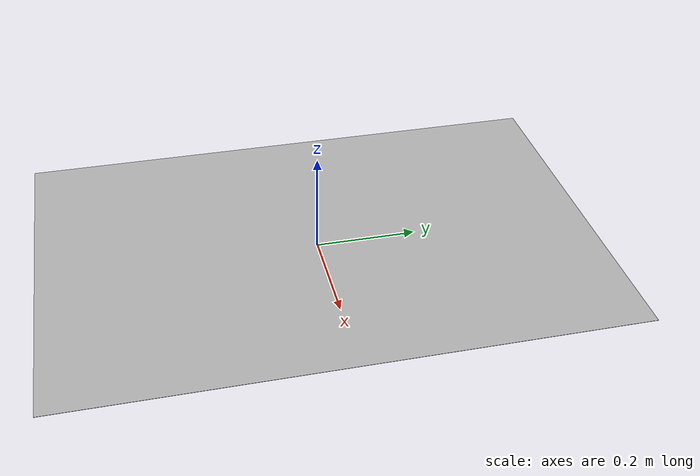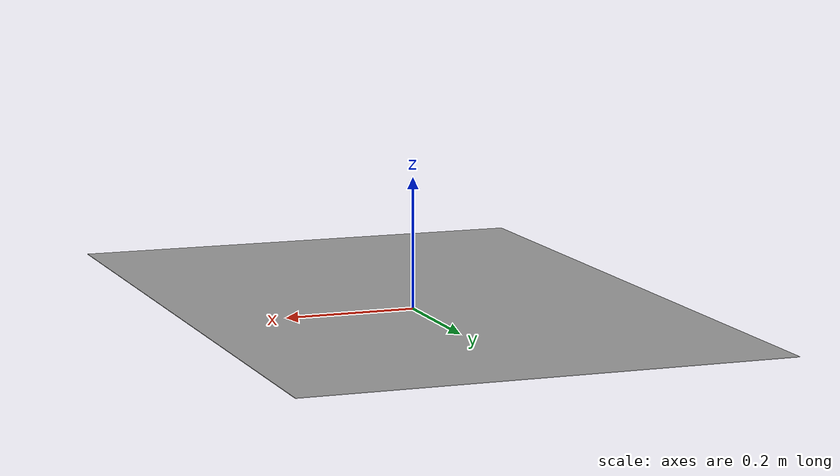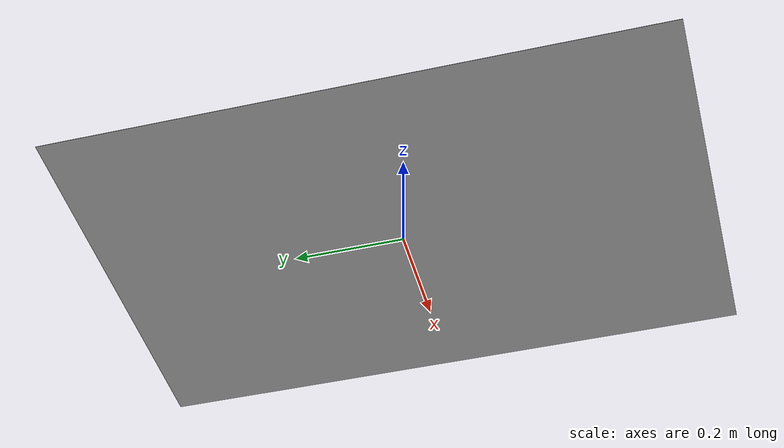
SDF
<?xml version="1.0"?>
<sdf version="1.9">
  <model name="aruco_landing_pad">
    <static>true</static>
    <link name="pad">
      <pose>0 0 0.006 0 0 0</pose>
      <collision name="collision">
        <geometry><box><size>0.728 1.104 0.012</size></box></geometry>
      </collision>
      <visual name="marker_board">
        <pose>0 0 0.006 0 0 0</pose>
        <geometry>
          <plane><normal>0 0 1</normal><size>0.728 1.104</size></plane>
        </geometry>
        <material>
          <pbr><metal>
            <albedo_map>model://aruco_landing_pad/materials/textures/aruco_board.png</albedo_map>
            <roughness>1.0</roughness><metalness>0.0</metalness>
          </metal></pbr>
        </material>
      </visual>
    </link>
  </model>
</sdf>
